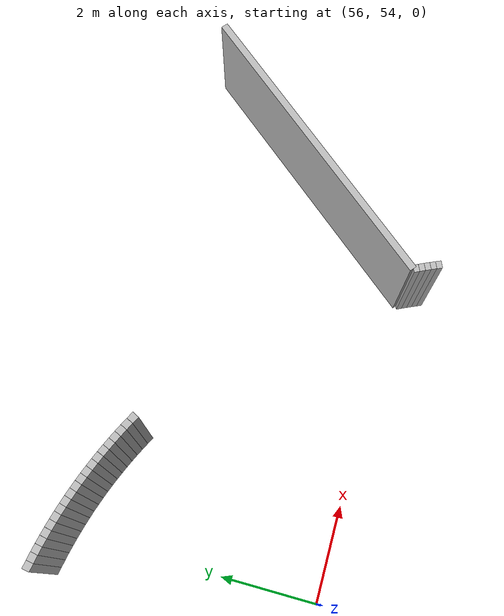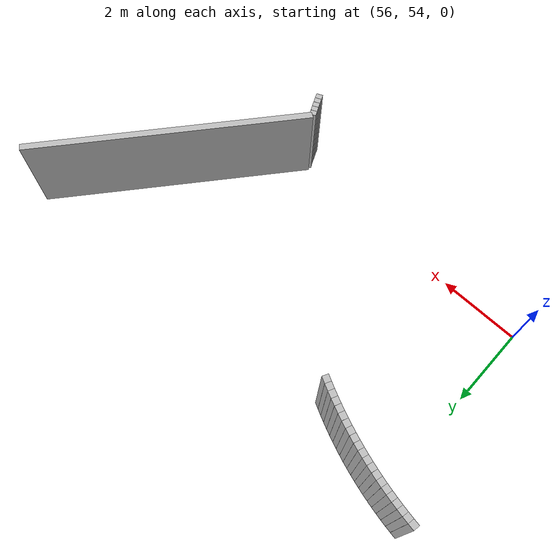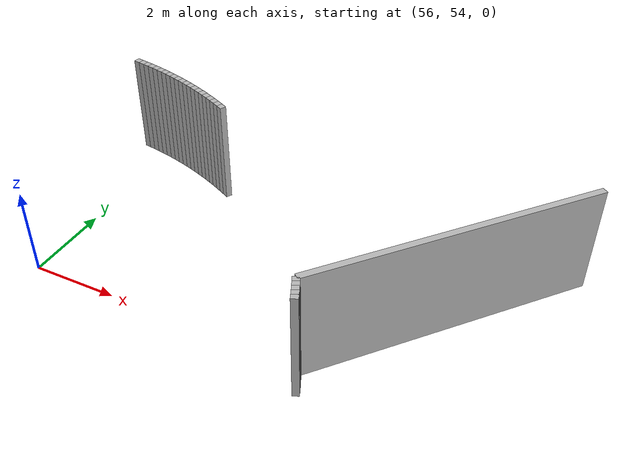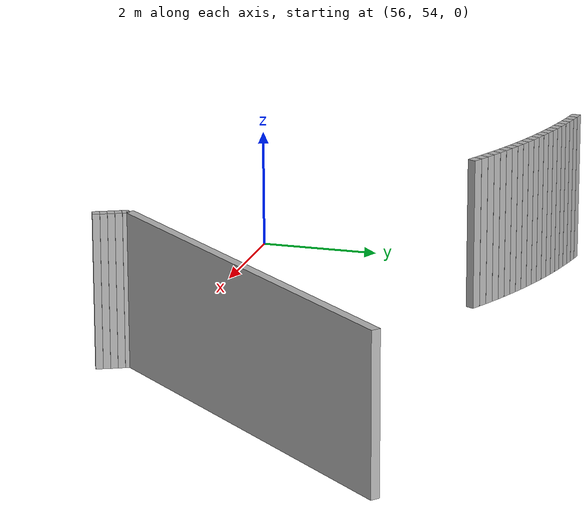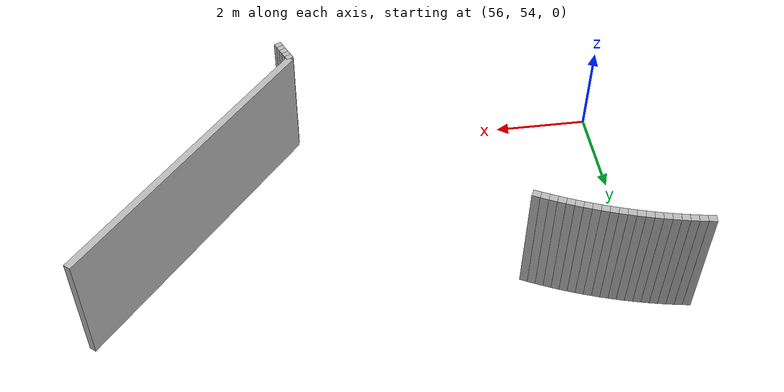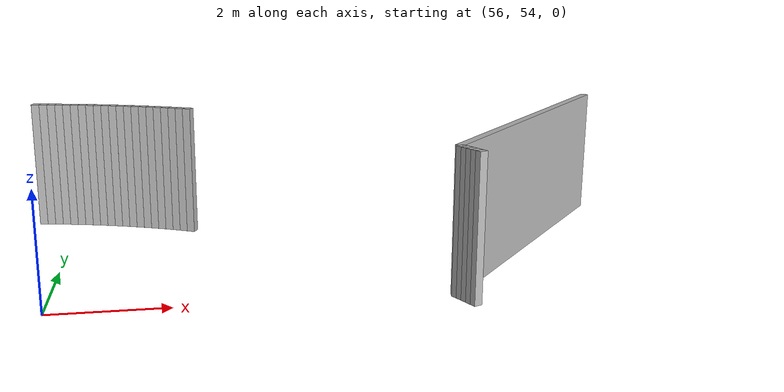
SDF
<sdf version="1.6">
 <model name="sps_2005">
  <static>1</static>
  <allow_auto_disable>0</allow_auto_disable>
  <link name="Wall315">
   <collision name="collision"><geometry><box><size>6.63013 0.15 2.5</size></box></geometry></collision>
   <visual name="visual">
    <geometry><box><size>6.63013 0.15 2.5</size></box></geometry>
    <transparency>0.0</transparency>
   </visual>
   <pose>64.6799 56.3916 1.25 0 0 -2.2738</pose>
  </link>
  <link name="Wall8139">
   <collision name="collision"><geometry><box><size>0.113803 0.15 2.5</size></box></geometry></collision>
   <visual name="visual">
    <geometry><box><size>0.113803 0.15 2.5</size></box></geometry>
    <transparency>0.0</transparency>
   </visual>
   <pose>62.7503 53.3974 1.25 0 -0 1.97541</pose>
  </link>
  <link name="Wall8140">
   <collision name="collision"><geometry><box><size>0.113675 0.15 2.5</size></box></geometry></collision>
   <visual name="visual">
    <geometry><box><size>0.113675 0.15 2.5</size></box></geometry>
    <transparency>0.0</transparency>
   </visual>
   <pose>62.7049 53.5017 1.25 0 -0 1.9876</pose>
  </link>
  <link name="Wall8141">
   <collision name="collision"><geometry><box><size>0.113705 0.15 2.5</size></box></geometry></collision>
   <visual name="visual">
    <geometry><box><size>0.113705 0.15 2.5</size></box></geometry>
    <transparency>0.0</transparency>
   </visual>
   <pose>62.6583 53.6054 1.25 0 -0 1.99867</pose>
  </link>
  <link name="Wall8142">
   <collision name="collision"><geometry><box><size>0.113775 0.15 2.5</size></box></geometry></collision>
   <visual name="visual">
    <geometry><box><size>0.113775 0.15 2.5</size></box></geometry>
    <transparency>0.0</transparency>
   </visual>
   <pose>62.6105 53.7086 1.25 0 -0 2.01021</pose>
  </link>
  <link name="Wall8143">
   <collision name="collision"><geometry><box><size>0.113805 0.15 2.5</size></box></geometry></collision>
   <visual name="visual">
    <geometry><box><size>0.113805 0.15 2.5</size></box></geometry>
    <transparency>0.0</transparency>
   </visual>
   <pose>62.5615 53.8113 1.25 0 -0 2.02197</pose>
  </link>
  <link name="Wall10141">
   <collision name="collision"><geometry><box><size>0.160301 0.15 2.5</size></box></geometry></collision>
   <visual name="visual">
    <geometry><box><size>0.160301 0.15 2.5</size></box></geometry>
    <transparency>0.0</transparency>
   </visual>
   <pose>58.2949 58.2587 1.25 0 -0 2.66194</pose>
  </link>
  <link name="Wall10142">
   <collision name="collision"><geometry><box><size>0.160336 0.15 2.5</size></box></geometry></collision>
   <visual name="visual">
    <geometry><box><size>0.160336 0.15 2.5</size></box></geometry>
    <transparency>0.0</transparency>
   </visual>
   <pose>58.1521 58.3314 1.25 0 -0 2.67999</pose>
  </link>
  <link name="Wall10143">
   <collision name="collision"><geometry><box><size>0.160439 0.15 2.5</size></box></geometry></collision>
   <visual name="visual">
    <geometry><box><size>0.160439 0.15 2.5</size></box></geometry>
    <transparency>0.0</transparency>
   </visual>
   <pose>58.008 58.4018 1.25 0 -0 2.69428</pose>
  </link>
  <link name="Wall10144">
   <collision name="collision"><geometry><box><size>0.160421 0.15 2.5</size></box></geometry></collision>
   <visual name="visual">
    <geometry><box><size>0.160421 0.15 2.5</size></box></geometry>
    <transparency>0.0</transparency>
   </visual>
   <pose>57.8628 58.47 1.25 0 -0 2.71062</pose>
  </link>
  <link name="Wall10145">
   <collision name="collision"><geometry><box><size>0.160198 0.15 2.5</size></box></geometry></collision>
   <visual name="visual">
    <geometry><box><size>0.160198 0.15 2.5</size></box></geometry>
    <transparency>0.0</transparency>
   </visual>
   <pose>57.7166 58.5358 1.25 0 -0 2.7267</pose>
  </link>
  <link name="Wall10146">
   <collision name="collision"><geometry><box><size>0.160378 0.15 2.5</size></box></geometry></collision>
   <visual name="visual">
    <geometry><box><size>0.160378 0.15 2.5</size></box></geometry>
    <transparency>0.0</transparency>
   </visual>
   <pose>57.5694 58.5992 1.25 0 -0 2.74335</pose>
  </link>
  <link name="Wall10147">
   <collision name="collision"><geometry><box><size>0.160467 0.15 2.5</size></box></geometry></collision>
   <visual name="visual">
    <geometry><box><size>0.160467 0.15 2.5</size></box></geometry>
    <transparency>0.0</transparency>
   </visual>
   <pose>57.421 58.6603 1.25 0 -0 2.75798</pose>
  </link>
  <link name="Wall10148">
   <collision name="collision"><geometry><box><size>0.160222 0.15 2.5</size></box></geometry></collision>
   <visual name="visual">
    <geometry><box><size>0.160222 0.15 2.5</size></box></geometry>
    <transparency>0.0</transparency>
   </visual>
   <pose>57.2718 58.719 1.25 0 -0 2.77538</pose>
  </link>
  <link name="Wall10149">
   <collision name="collision"><geometry><box><size>0.160365 0.15 2.5</size></box></geometry></collision>
   <visual name="visual">
    <geometry><box><size>0.160365 0.15 2.5</size></box></geometry>
    <transparency>0.0</transparency>
   </visual>
   <pose>57.1218 58.7753 1.25 0 -0 2.79035</pose>
  </link>
  <link name="Wall10150">
   <collision name="collision"><geometry><box><size>0.160308 0.15 2.5</size></box></geometry></collision>
   <visual name="visual">
    <geometry><box><size>0.160308 0.15 2.5</size></box></geometry>
    <transparency>0.0</transparency>
   </visual>
   <pose>56.9708 58.8292 1.25 0 -0 2.8072</pose>
  </link>
  <link name="Wall10151">
   <collision name="collision"><geometry><box><size>0.16047 0.15 2.5</size></box></geometry></collision>
   <visual name="visual">
    <geometry><box><size>0.16047 0.15 2.5</size></box></geometry>
    <transparency>0.0</transparency>
   </visual>
   <pose>56.8188 58.8806 1.25 0 -0 2.82321</pose>
  </link>
  <link name="Wall10152">
   <collision name="collision"><geometry><box><size>0.160246 0.15 2.5</size></box></geometry></collision>
   <visual name="visual">
    <geometry><box><size>0.160246 0.15 2.5</size></box></geometry>
    <transparency>0.0</transparency>
   </visual>
   <pose>56.6662 58.9296 1.25 0 -0 2.83875</pose>
  </link>
  <link name="Wall10153">
   <collision name="collision"><geometry><box><size>0.160303 0.15 2.5</size></box></geometry></collision>
   <visual name="visual">
    <geometry><box><size>0.160303 0.15 2.5</size></box></geometry>
    <transparency>0.0</transparency>
   </visual>
   <pose>56.5128 58.9761 1.25 0 -0 2.85597</pose>
  </link>
  <link name="Wall10154">
   <collision name="collision"><geometry><box><size>0.160479 0.15 2.5</size></box></geometry></collision>
   <visual name="visual">
    <geometry><box><size>0.160479 0.15 2.5</size></box></geometry>
    <transparency>0.0</transparency>
   </visual>
   <pose>56.3586 59.0202 1.25 0 -0 2.87014</pose>
  </link>
  <link name="Wall10155">
   <collision name="collision"><geometry><box><size>0.160208 0.15 2.5</size></box></geometry></collision>
   <visual name="visual">
    <geometry><box><size>0.160208 0.15 2.5</size></box></geometry>
    <transparency>0.0</transparency>
   </visual>
   <pose>56.2038 59.0619 1.25 0 -0 2.88663</pose>
  </link>
  <link name="Wall10156">
   <collision name="collision"><geometry><box><size>0.160515 0.15 2.5</size></box></geometry></collision>
   <visual name="visual">
    <geometry><box><size>0.160515 0.15 2.5</size></box></geometry>
    <transparency>0.0</transparency>
   </visual>
   <pose>56.0482 59.101 1.25 0 -0 2.90399</pose>
  </link>
  <link name="Wall10157">
   <collision name="collision"><geometry><box><size>0.160329 0.15 2.5</size></box></geometry></collision>
   <visual name="visual">
    <geometry><box><size>0.160329 0.15 2.5</size></box></geometry>
    <transparency>0.0</transparency>
   </visual>
   <pose>55.8921 59.1376 1.25 0 -0 2.91896</pose>
  </link>
  <link name="Wall10158">
   <collision name="collision"><geometry><box><size>0.160368 0.15 2.5</size></box></geometry></collision>
   <visual name="visual">
    <geometry><box><size>0.160368 0.15 2.5</size></box></geometry>
    <transparency>0.0</transparency>
   </visual>
   <pose>55.7354 59.1717 1.25 0 -0 2.93576</pose>
  </link>
  <link name="Wall10159">
   <collision name="collision"><geometry><box><size>0.160329 0.15 2.5</size></box></geometry></collision>
   <visual name="visual">
    <geometry><box><size>0.160329 0.15 2.5</size></box></geometry>
    <transparency>0.0</transparency>
   </visual>
   <pose>55.5782 59.2033 1.25 0 -0 2.95047</pose>
  </link>
  <link name="Wall10160">
   <collision name="collision"><geometry><box><size>0.160442 0.15 2.5</size></box></geometry></collision>
   <visual name="visual">
    <geometry><box><size>0.160442 0.15 2.5</size></box></geometry>
    <transparency>0.0</transparency>
   </visual>
   <pose>55.4205 59.2324 1.25 0 -0 2.96763</pose>
  </link>
  <link name="Wall10161">
   <collision name="collision"><geometry><box><size>0.160228 0.15 2.5</size></box></geometry></collision>
   <visual name="visual">
    <geometry><box><size>0.160228 0.15 2.5</size></box></geometry>
    <transparency>0.0</transparency>
   </visual>
   <pose>55.2624 59.259 1.25 0 -0 2.98246</pose>
  </link>
 </model>
</sdf>
